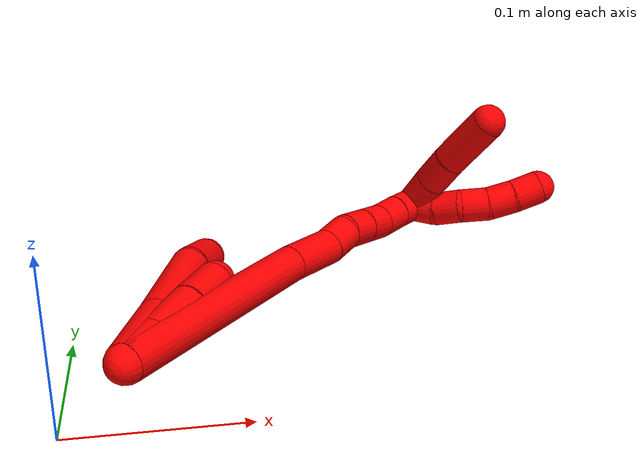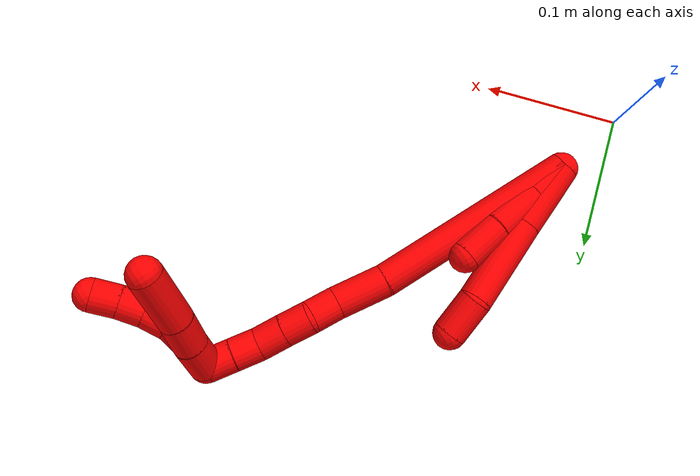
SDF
<sdf version="1.7">
 <world name="default">
  <model name="2">
   <static>0</static>
   <link name="2">
    <collision name="collision-cylinder-e_1_2_8">
     <pose>-0.009686 -0.001243 0.024513 0.050651 -0.375884 -0.009635</pose>
     <geometry><cylinder><radius>0.0125</radius><length>0.052772</length></cylinder></geometry>
     <surface>
      <friction><ode><mu>1.16</mu><mu2>1.16</mu2><slip1>0</slip1><slip2>0</slip2></ode></friction>
      <contact><ode><kp>1e+06</kp><kd>1</kd><max_vel>0</max_vel><min_depth>0.001</min_depth></ode></contact>
     </surface>
    </collision>
    <visual name="visual-cylinder-e_1_2_8">
     <pose>-0.009686 -0.001243 0.024513 0.050651 -0.375884 -0.009635</pose>
     <geometry><cylinder><radius>0.0125</radius><length>0.052772</length></cylinder></geometry>
     <material><ambient>1 0 0 1</ambient></material>
    </visual>
    <collision name="collision-cylinder-e_2_8_9">
     <pose>-0.031848 -0.005192 0.079973 0.087241 -0.381853 -0.016872</pose>
     <geometry><cylinder><radius>0.0125</radius><length>0.066955</length></cylinder></geometry>
     <surface>
      <friction><ode><mu>1.16</mu><mu2>1.16</mu2><slip1>0</slip1><slip2>0</slip2></ode></friction>
      <contact><ode><kp>1e+06</kp><kd>1</kd><max_vel>0</max_vel><min_depth>0.001</min_depth></ode></contact>
     </surface>
    </collision>
    <visual name="visual-cylinder-e_2_8_9">
     <pose>-0.031848 -0.005192 0.079973 0.087241 -0.381853 -0.016872</pose>
     <geometry><cylinder><radius>0.0125</radius><length>0.066955</length></cylinder></geometry>
     <material><ambient>1 0 0 1</ambient></material>
    </visual>
    <collision name="collision-cylinder-e_3_9_6">
     <pose>-0.049882 -0.004889 0.124674 -0.215493 -0.376118 0.041164</pose>
     <geometry><cylinder><radius>0.0125</radius><length>0.030272</length></cylinder></geometry>
     <surface>
      <friction><ode><mu>1.16</mu><mu2>1.16</mu2><slip1>0</slip1><slip2>0</slip2></ode></friction>
      <contact><ode><kp>1e+06</kp><kd>1</kd><max_vel>0</max_vel><min_depth>0.001</min_depth></ode></contact>
     </surface>
    </collision>
    <visual name="visual-cylinder-e_3_9_6">
     <pose>-0.049882 -0.004889 0.124674 -0.215493 -0.376118 0.041164</pose>
     <geometry><cylinder><radius>0.0125</radius><length>0.030272</length></cylinder></geometry>
     <material><ambient>1 0 0 1</ambient></material>
    </visual>
    <collision name="collision-cylinder-e_1_2_10">
     <pose>-0.002536 -1e-05 0.014695 0.000678 -0.170874 -5.8e-05</pose>
     <geometry><cylinder><radius>0.0125</radius><length>0.029823</length></cylinder></geometry>
     <surface>
      <friction><ode><mu>1.16</mu><mu2>1.16</mu2><slip1>0</slip1><slip2>0</slip2></ode></friction>
      <contact><ode><kp>1e+06</kp><kd>1</kd><max_vel>0</max_vel><min_depth>0.001</min_depth></ode></contact>
     </surface>
    </collision>
    <visual name="visual-cylinder-e_1_2_10">
     <pose>-0.002536 -1e-05 0.014695 0.000678 -0.170874 -5.8e-05</pose>
     <geometry><cylinder><radius>0.0125</radius><length>0.029823</length></cylinder></geometry>
     <material><ambient>1 0 0 1</ambient></material>
    </visual>
    <collision name="collision-cylinder-e_2_10_11">
     <pose>-0.007299 -0.001419 0.048286 0.073919 -0.117008 -0.004331</pose>
     <geometry><cylinder><radius>0.0125</radius><length>0.038159</length></cylinder></geometry>
     <surface>
      <friction><ode><mu>1.16</mu><mu2>1.16</mu2><slip1>0</slip1><slip2>0</slip2></ode></friction>
      <contact><ode><kp>1e+06</kp><kd>1</kd><max_vel>0</max_vel><min_depth>0.001</min_depth></ode></contact>
     </surface>
    </collision>
    <visual name="visual-cylinder-e_2_10_11">
     <pose>-0.007299 -0.001419 0.048286 0.073919 -0.117008 -0.004331</pose>
     <geometry><cylinder><radius>0.0125</radius><length>0.038159</length></cylinder></geometry>
     <material><ambient>1 0 0 1</ambient></material>
    </visual>
    <collision name="collision-cylinder-e_3_11_5">
     <pose>-0.012 -0.00317 0.082996 0.022242 -0.155166 -0.001729</pose>
     <geometry><cylinder><radius>0.0125</radius><length>0.032018</length></cylinder></geometry>
     <surface>
      <friction><ode><mu>1.16</mu><mu2>1.16</mu2><slip1>0</slip1><slip2>0</slip2></ode></friction>
      <contact><ode><kp>1e+06</kp><kd>1</kd><max_vel>0</max_vel><min_depth>0.001</min_depth></ode></contact>
     </surface>
    </collision>
    <visual name="visual-cylinder-e_3_11_5">
     <pose>-0.012 -0.00317 0.082996 0.022242 -0.155166 -0.001729</pose>
     <geometry><cylinder><radius>0.0125</radius><length>0.032018</length></cylinder></geometry>
     <material><ambient>1 0 0 1</ambient></material>
    </visual>
    <collision name="collision-cylinder-e_1_2_12">
     <pose>0.000271 0.005553 0.078338 -0.070763 0.003447 -0.000122</pose>
     <geometry><cylinder><radius>0.0125</radius><length>0.15707</length></cylinder></geometry>
     <surface>
      <friction><ode><mu>1.16</mu><mu2>1.16</mu2><slip1>0</slip1><slip2>0</slip2></ode></friction>
      <contact><ode><kp>1e+06</kp><kd>1</kd><max_vel>0</max_vel><min_depth>0.001</min_depth></ode></contact>
     </surface>
    </collision>
    <visual name="visual-cylinder-e_1_2_12">
     <pose>0.000271 0.005553 0.078338 -0.070763 0.003447 -0.000122</pose>
     <geometry><cylinder><radius>0.0125</radius><length>0.15707</length></cylinder></geometry>
     <material><ambient>1 0 0 1</ambient></material>
    </visual>
    <collision name="collision-cylinder-e_2_12_13">
     <pose>0.00301 0.013099 0.175934 -0.10314 0.12683 -0.006555</pose>
     <geometry><cylinder><radius>0.0125</radius><length>0.039035</length></cylinder></geometry>
     <surface>
      <friction><ode><mu>1.16</mu><mu2>1.16</mu2><slip1>0</slip1><slip2>0</slip2></ode></friction>
      <contact><ode><kp>1e+06</kp><kd>1</kd><max_vel>0</max_vel><min_depth>0.001</min_depth></ode></contact>
     </surface>
    </collision>
    <visual name="visual-cylinder-e_2_12_13">
     <pose>0.00301 0.013099 0.175934 -0.10314 0.12683 -0.006555</pose>
     <geometry><cylinder><radius>0.0125</radius><length>0.039035</length></cylinder></geometry>
     <material><ambient>1 0 0 1</ambient></material>
    </visual>
    <collision name="collision-cylinder-e_3_13_14">
     <pose>0.006505 0.013901 0.205894 0.110835 0.094995 0.005274</pose>
     <geometry><cylinder><radius>0.0125</radius><length>0.021634</length></cylinder></geometry>
     <surface>
      <friction><ode><mu>1.16</mu><mu2>1.16</mu2><slip1>0</slip1><slip2>0</slip2></ode></friction>
      <contact><ode><kp>1e+06</kp><kd>1</kd><max_vel>0</max_vel><min_depth>0.001</min_depth></ode></contact>
     </surface>
    </collision>
    <visual name="visual-cylinder-e_3_13_14">
     <pose>0.006505 0.013901 0.205894 0.110835 0.094995 0.005274</pose>
     <geometry><cylinder><radius>0.0125</radius><length>0.021634</length></cylinder></geometry>
     <material><ambient>1 0 0 1</ambient></material>
    </visual>
    <collision name="collision-cylinder-e_4_14_15">
     <pose>0.00833 0.014848 0.226742 -0.207665 0.076945 -0.008022</pose>
     <geometry><cylinder><radius>0.0125</radius><length>0.020798</length></cylinder></geometry>
     <surface>
      <friction><ode><mu>1.16</mu><mu2>1.16</mu2><slip1>0</slip1><slip2>0</slip2></ode></friction>
      <contact><ode><kp>1e+06</kp><kd>1</kd><max_vel>0</max_vel><min_depth>0.001</min_depth></ode></contact>
     </surface>
    </collision>
    <visual name="visual-cylinder-e_4_14_15">
     <pose>0.00833 0.014848 0.226742 -0.207665 0.076945 -0.008022</pose>
     <geometry><cylinder><radius>0.0125</radius><length>0.020798</length></cylinder></geometry>
     <material><ambient>1 0 0 1</ambient></material>
    </visual>
    <collision name="collision-cylinder-e_5_15_16">
     <pose>0.009659 0.019244 0.24724 -0.214782 0.049955 -0.005387</pose>
     <geometry><cylinder><radius>0.0125</radius><length>0.021218</length></cylinder></geometry>
     <surface>
      <friction><ode><mu>1.16</mu><mu2>1.16</mu2><slip1>0</slip1><slip2>0</slip2></ode></friction>
      <contact><ode><kp>1e+06</kp><kd>1</kd><max_vel>0</max_vel><min_depth>0.001</min_depth></ode></contact>
     </surface>
    </collision>
    <visual name="visual-cylinder-e_5_15_16">
     <pose>0.009659 0.019244 0.24724 -0.214782 0.049955 -0.005387</pose>
     <geometry><cylinder><radius>0.0125</radius><length>0.021218</length></cylinder></geometry>
     <material><ambient>1 0 0 1</ambient></material>
    </visual>
    <collision name="collision-cylinder-e_6_16_17">
     <pose>0.011965 0.02175 0.267462 -0.025094 0.17795 -0.002239</pose>
     <geometry><cylinder><radius>0.0125</radius><length>0.020064</length></cylinder></geometry>
     <surface>
      <friction><ode><mu>1.16</mu><mu2>1.16</mu2><slip1>0</slip1><slip2>0</slip2></ode></friction>
      <contact><ode><kp>1e+06</kp><kd>1</kd><max_vel>0</max_vel><min_depth>0.001</min_depth></ode></contact>
     </surface>
    </collision>
    <visual name="visual-cylinder-e_6_16_17">
     <pose>0.011965 0.02175 0.267462 -0.025094 0.17795 -0.002239</pose>
     <geometry><cylinder><radius>0.0125</radius><length>0.020064</length></cylinder></geometry>
     <material><ambient>1 0 0 1</ambient></material>
    </visual>
    <collision name="collision-cylinder-e_7_17_1">
     <pose>0.015473 0.022712 0.287247 -0.071903 0.172566 -0.006222</pose>
     <geometry><cylinder><radius>0.0125</radius><length>0.020181</length></cylinder></geometry>
     <surface>
      <friction><ode><mu>1.16</mu><mu2>1.16</mu2><slip1>0</slip1><slip2>0</slip2></ode></friction>
      <contact><ode><kp>1e+06</kp><kd>1</kd><max_vel>0</max_vel><min_depth>0.001</min_depth></ode></contact>
     </surface>
    </collision>
    <visual name="visual-cylinder-e_7_17_1">
     <pose>0.015473 0.022712 0.287247 -0.071903 0.172566 -0.006222</pose>
     <geometry><cylinder><radius>0.0125</radius><length>0.020181</length></cylinder></geometry>
     <material><ambient>1 0 0 1</ambient></material>
    </visual>
    <collision name="collision-cylinder-e_1_1_18">
     <pose>0.026871 0.025872 0.297941 -1.26252 1.31121 -1.02438</pose>
     <geometry><cylinder><radius>0.0125</radius><length>0.02</length></cylinder></geometry>
     <surface>
      <friction><ode><mu>1.16</mu><mu2>1.16</mu2><slip1>0</slip1><slip2>0</slip2></ode></friction>
      <contact><ode><kp>1e+06</kp><kd>1</kd><max_vel>0</max_vel><min_depth>0.001</min_depth></ode></contact>
     </surface>
    </collision>
    <visual name="visual-cylinder-e_1_1_18">
     <pose>0.026871 0.025872 0.297941 -1.26252 1.31121 -1.02438</pose>
     <geometry><cylinder><radius>0.0125</radius><length>0.02</length></cylinder></geometry>
     <material><ambient>1 0 0 1</ambient></material>
    </visual>
    <collision name="collision-cylinder-e_2_18_19">
     <pose>0.04631 0.028142 0.300828 0.08305 1.35769 0.067014</pose>
     <geometry><cylinder><radius>0.0125</radius><length>0.02</length></cylinder></geometry>
     <surface>
      <friction><ode><mu>1.16</mu><mu2>1.16</mu2><slip1>0</slip1><slip2>0</slip2></ode></friction>
      <contact><ode><kp>1e+06</kp><kd>1</kd><max_vel>0</max_vel><min_depth>0.001</min_depth></ode></contact>
     </surface>
    </collision>
    <visual name="visual-cylinder-e_2_18_19">
     <pose>0.04631 0.028142 0.300828 0.08305 1.35769 0.067014</pose>
     <geometry><cylinder><radius>0.0125</radius><length>0.02</length></cylinder></geometry>
     <material><ambient>1 0 0 1</ambient></material>
    </visual>
    <collision name="collision-cylinder-e_3_19_20">
     <pose>0.064708 0.029251 0.307831 -0.256643 1.04005 -0.147496</pose>
     <geometry><cylinder><radius>0.0125</radius><length>0.02</length></cylinder></geometry>
     <surface>
      <friction><ode><mu>1.16</mu><mu2>1.16</mu2><slip1>0</slip1><slip2>0</slip2></ode></friction>
      <contact><ode><kp>1e+06</kp><kd>1</kd><max_vel>0</max_vel><min_depth>0.001</min_depth></ode></contact>
     </surface>
    </collision>
    <visual name="visual-cylinder-e_3_19_20">
     <pose>0.064708 0.029251 0.307831 -0.256643 1.04005 -0.147496</pose>
     <geometry><cylinder><radius>0.0125</radius><length>0.02</length></cylinder></geometry>
     <material><ambient>1 0 0 1</ambient></material>
    </visual>
    <collision name="collision-cylinder-e_4_20_21">
     <pose>0.08134 0.030036 0.318697 0.083613 0.92854 0.04189</pose>
     <geometry><cylinder><radius>0.0125</radius><length>0.02</length></cylinder></geometry>
     <surface>
      <friction><ode><mu>1.16</mu><mu2>1.16</mu2><slip1>0</slip1><slip2>0</slip2></ode></friction>
      <contact><ode><kp>1e+06</kp><kd>1</kd><max_vel>0</max_vel><min_depth>0.001</min_depth></ode></contact>
     </surface>
    </collision>
    <visual name="visual-cylinder-e_4_20_21">
     <pose>0.08134 0.030036 0.318697 0.083613 0.92854 0.04189</pose>
     <geometry><cylinder><radius>0.0125</radius><length>0.02</length></cylinder></geometry>
     <material><ambient>1 0 0 1</ambient></material>
    </visual>
    <collision name="collision-cylinder-e_5_21_4">
     <pose>0.096696 0.028548 0.331375 0.146183 0.825484 0.064105</pose>
     <geometry><cylinder><radius>0.0125</radius><length>0.02</length></cylinder></geometry>
     <surface>
      <friction><ode><mu>1.16</mu><mu2>1.16</mu2><slip1>0</slip1><slip2>0</slip2></ode></friction>
      <contact><ode><kp>1e+06</kp><kd>1</kd><max_vel>0</max_vel><min_depth>0.001</min_depth></ode></contact>
     </surface>
    </collision>
    <visual name="visual-cylinder-e_5_21_4">
     <pose>0.096696 0.028548 0.331375 0.146183 0.825484 0.064105</pose>
     <geometry><cylinder><radius>0.0125</radius><length>0.02</length></cylinder></geometry>
     <material><ambient>1 0 0 1</ambient></material>
    </visual>
    <collision name="collision-cylinder-e_1_1_22">
     <pose>0.027921 0.013943 0.296909 1.59749 0.846131 0.866295</pose>
     <geometry><cylinder><radius>0.0125</radius><length>0.028622</length></cylinder></geometry>
     <surface>
      <friction><ode><mu>1.16</mu><mu2>1.16</mu2><slip1>0</slip1><slip2>0</slip2></ode></friction>
      <contact><ode><kp>1e+06</kp><kd>1</kd><max_vel>0</max_vel><min_depth>0.001</min_depth></ode></contact>
     </surface>
    </collision>
    <visual name="visual-cylinder-e_1_1_22">
     <pose>0.027921 0.013943 0.296909 1.59749 0.846131 0.866295</pose>
     <geometry><cylinder><radius>0.0125</radius><length>0.028622</length></cylinder></geometry>
     <material><ambient>1 0 0 1</ambient></material>
    </visual>
    <collision name="collision-cylinder-e_2_22_23">
     <pose>0.048803 -0.003758 0.295572 1.702 0.886829 0.992981</pose>
     <geometry><cylinder><radius>0.0125</radius><length>0.026235</length></cylinder></geometry>
     <surface>
      <friction><ode><mu>1.16</mu><mu2>1.16</mu2><slip1>0</slip1><slip2>0</slip2></ode></friction>
      <contact><ode><kp>1e+06</kp><kd>1</kd><max_vel>0</max_vel><min_depth>0.001</min_depth></ode></contact>
     </surface>
    </collision>
    <visual name="visual-cylinder-e_2_22_23">
     <pose>0.048803 -0.003758 0.295572 1.702 0.886829 0.992981</pose>
     <geometry><cylinder><radius>0.0125</radius><length>0.026235</length></cylinder></geometry>
     <material><ambient>1 0 0 1</ambient></material>
    </visual>
    <collision name="collision-cylinder-e_3_23_3">
     <pose>0.07718 -0.025292 0.293772 1.62442 0.938705 0.98267</pose>
     <geometry><cylinder><radius>0.0125</radius><length>0.045143</length></cylinder></geometry>
     <surface>
      <friction><ode><mu>1.16</mu><mu2>1.16</mu2><slip1>0</slip1><slip2>0</slip2></ode></friction>
      <contact><ode><kp>1e+06</kp><kd>1</kd><max_vel>0</max_vel><min_depth>0.001</min_depth></ode></contact>
     </surface>
    </collision>
    <visual name="visual-cylinder-e_3_23_3">
     <pose>0.07718 -0.025292 0.293772 1.62442 0.938705 0.98267</pose>
     <geometry><cylinder><radius>0.0125</radius><length>0.045143</length></cylinder></geometry>
     <material><ambient>1 0 0 1</ambient></material>
    </visual>
    <collision name="collision-sphere-3">
     <pose>0.095391 -0.038609 0.293058 0 -0 0</pose>
     <geometry><sphere><radius>0.0125</radius></sphere></geometry>
     <surface>
      <friction><ode><mu>1.16</mu><mu2>1.16</mu2><slip1>0</slip1><slip2>0</slip2></ode></friction>
      <contact><ode><kp>1e+06</kp><kd>1</kd><max_vel>0</max_vel><min_depth>0.001</min_depth></ode></contact>
     </surface>
    </collision>
    <visual name="visual-sphere-3">
     <pose>0.095391 -0.038609 0.293058 0 -0 0</pose>
     <geometry><sphere><radius>0.0125</radius></sphere></geometry>
     <material><ambient>1 0 0 1</ambient></material>
    </visual>
    <collision name="collision-sphere-23">
     <pose>0.05897 -0.011975 0.294487 0 -0 0</pose>
     <geometry><sphere><radius>0.0125</radius></sphere></geometry>
     <surface>
      <friction><ode><mu>1.16</mu><mu2>1.16</mu2><slip1>0</slip1><slip2>0</slip2></ode></friction>
      <contact><ode><kp>1e+06</kp><kd>1</kd><max_vel>0</max_vel><min_depth>0.001</min_depth></ode></contact>
     </surface>
    </collision>
    <visual name="visual-sphere-23">
     <pose>0.05897 -0.011975 0.294487 0 -0 0</pose>
     <geometry><sphere><radius>0.0125</radius></sphere></geometry>
     <material><ambient>1 0 0 1</ambient></material>
    </visual>
    <collision name="collision-sphere-22">
     <pose>0.038636 0.00446 0.296656 0 -0 0</pose>
     <geometry><sphere><radius>0.0125</radius></sphere></geometry>
     <surface>
      <friction><ode><mu>1.16</mu><mu2>1.16</mu2><slip1>0</slip1><slip2>0</slip2></ode></friction>
      <contact><ode><kp>1e+06</kp><kd>1</kd><max_vel>0</max_vel><min_depth>0.001</min_depth></ode></contact>
     </surface>
    </collision>
    <visual name="visual-sphere-22">
     <pose>0.038636 0.00446 0.296656 0 -0 0</pose>
     <geometry><sphere><radius>0.0125</radius></sphere></geometry>
     <material><ambient>1 0 0 1</ambient></material>
    </visual>
    <collision name="collision-sphere-4">
     <pose>0.104044 0.02756 0.338085 0 -0 0</pose>
     <geometry><sphere><radius>0.0125</radius></sphere></geometry>
     <surface>
      <friction><ode><mu>1.16</mu><mu2>1.16</mu2><slip1>0</slip1><slip2>0</slip2></ode></friction>
      <contact><ode><kp>1e+06</kp><kd>1</kd><max_vel>0</max_vel><min_depth>0.001</min_depth></ode></contact>
     </surface>
    </collision>
    <visual name="visual-sphere-4">
     <pose>0.104044 0.02756 0.338085 0 -0 0</pose>
     <geometry><sphere><radius>0.0125</radius></sphere></geometry>
     <material><ambient>1 0 0 1</ambient></material>
    </visual>
    <collision name="collision-sphere-21">
     <pose>0.089347 0.029536 0.324666 0 -0 0</pose>
     <geometry><sphere><radius>0.0125</radius></sphere></geometry>
     <surface>
      <friction><ode><mu>1.16</mu><mu2>1.16</mu2><slip1>0</slip1><slip2>0</slip2></ode></friction>
      <contact><ode><kp>1e+06</kp><kd>1</kd><max_vel>0</max_vel><min_depth>0.001</min_depth></ode></contact>
     </surface>
    </collision>
    <visual name="visual-sphere-21">
     <pose>0.089347 0.029536 0.324666 0 -0 0</pose>
     <geometry><sphere><radius>0.0125</radius></sphere></geometry>
     <material><ambient>1 0 0 1</ambient></material>
    </visual>
    <collision name="collision-sphere-20">
     <pose>0.073332 0.030536 0.312727 0 -0 0</pose>
     <geometry><sphere><radius>0.0125</radius></sphere></geometry>
     <surface>
      <friction><ode><mu>1.16</mu><mu2>1.16</mu2><slip1>0</slip1><slip2>0</slip2></ode></friction>
      <contact><ode><kp>1e+06</kp><kd>1</kd><max_vel>0</max_vel><min_depth>0.001</min_depth></ode></contact>
     </surface>
    </collision>
    <visual name="visual-sphere-20">
     <pose>0.073332 0.030536 0.312727 0 -0 0</pose>
     <geometry><sphere><radius>0.0125</radius></sphere></geometry>
     <material><ambient>1 0 0 1</ambient></material>
    </visual>
    <collision name="collision-sphere-11">
     <pose>-0.009526 -0.002819 0.067183 0 -0 0</pose>
     <geometry><sphere><radius>0.0125</radius></sphere></geometry>
     <surface>
      <friction><ode><mu>1.16</mu><mu2>1.16</mu2><slip1>0</slip1><slip2>0</slip2></ode></friction>
      <contact><ode><kp>1e+06</kp><kd>1</kd><max_vel>0</max_vel><min_depth>0.001</min_depth></ode></contact>
     </surface>
    </collision>
    <visual name="visual-sphere-11">
     <pose>-0.009526 -0.002819 0.067183 0 -0 0</pose>
     <geometry><sphere><radius>0.0125</radius></sphere></geometry>
     <material><ambient>1 0 0 1</ambient></material>
    </visual>
    <collision name="collision-sphere-10">
     <pose>-0.005071 -2e-05 0.029389 0 -0 0</pose>
     <geometry><sphere><radius>0.0125</radius></sphere></geometry>
     <surface>
      <friction><ode><mu>1.16</mu><mu2>1.16</mu2><slip1>0</slip1><slip2>0</slip2></ode></friction>
      <contact><ode><kp>1e+06</kp><kd>1</kd><max_vel>0</max_vel><min_depth>0.001</min_depth></ode></contact>
     </surface>
    </collision>
    <visual name="visual-sphere-10">
     <pose>-0.005071 -2e-05 0.029389 0 -0 0</pose>
     <geometry><sphere><radius>0.0125</radius></sphere></geometry>
     <material><ambient>1 0 0 1</ambient></material>
    </visual>
    <collision name="collision-sphere-6">
     <pose>-0.055442 -0.001878 0.138427 0 -0 0</pose>
     <geometry><sphere><radius>0.0125</radius></sphere></geometry>
     <surface>
      <friction><ode><mu>1.16</mu><mu2>1.16</mu2><slip1>0</slip1><slip2>0</slip2></ode></friction>
      <contact><ode><kp>1e+06</kp><kd>1</kd><max_vel>0</max_vel><min_depth>0.001</min_depth></ode></contact>
     </surface>
    </collision>
    <visual name="visual-sphere-6">
     <pose>-0.055442 -0.001878 0.138427 0 -0 0</pose>
     <geometry><sphere><radius>0.0125</radius></sphere></geometry>
     <material><ambient>1 0 0 1</ambient></material>
    </visual>
    <collision name="collision-sphere-9">
     <pose>-0.044323 -0.007899 0.110922 0 -0 0</pose>
     <geometry><sphere><radius>0.0125</radius></sphere></geometry>
     <surface>
      <friction><ode><mu>1.16</mu><mu2>1.16</mu2><slip1>0</slip1><slip2>0</slip2></ode></friction>
      <contact><ode><kp>1e+06</kp><kd>1</kd><max_vel>0</max_vel><min_depth>0.001</min_depth></ode></contact>
     </surface>
    </collision>
    <visual name="visual-sphere-9">
     <pose>-0.044323 -0.007899 0.110922 0 -0 0</pose>
     <geometry><sphere><radius>0.0125</radius></sphere></geometry>
     <material><ambient>1 0 0 1</ambient></material>
    </visual>
    <collision name="collision-sphere-2">
     <geometry><sphere><radius>0.0125</radius></sphere></geometry>
     <surface>
      <friction><ode><mu>1.16</mu><mu2>1.16</mu2><slip1>0</slip1><slip2>0</slip2></ode></friction>
      <contact><ode><kp>1e+06</kp><kd>1</kd><max_vel>0</max_vel><min_depth>0.001</min_depth></ode></contact>
     </surface>
    </collision>
    <visual name="visual-sphere-2">
     <geometry><sphere><radius>0.0125</radius></sphere></geometry>
     <material><ambient>1 0 0 1</ambient></material>
    </visual>
    <collision name="collision-sphere-19">
     <pose>0.056083 0.027967 0.302935 0 -0 0</pose>
     <geometry><sphere><radius>0.0125</radius></sphere></geometry>
     <surface>
      <friction><ode><mu>1.16</mu><mu2>1.16</mu2><slip1>0</slip1><slip2>0</slip2></ode></friction>
      <contact><ode><kp>1e+06</kp><kd>1</kd><max_vel>0</max_vel><min_depth>0.001</min_depth></ode></contact>
     </surface>
    </collision>
    <visual name="visual-sphere-19">
     <pose>0.056083 0.027967 0.302935 0 -0 0</pose>
     <geometry><sphere><radius>0.0125</radius></sphere></geometry>
     <material><ambient>1 0 0 1</ambient></material>
    </visual>
    <collision name="collision-sphere-8">
     <pose>-0.019372 -0.002485 0.049025 0 -0 0</pose>
     <geometry><sphere><radius>0.0125</radius></sphere></geometry>
     <surface>
      <friction><ode><mu>1.16</mu><mu2>1.16</mu2><slip1>0</slip1><slip2>0</slip2></ode></friction>
      <contact><ode><kp>1e+06</kp><kd>1</kd><max_vel>0</max_vel><min_depth>0.001</min_depth></ode></contact>
     </surface>
    </collision>
    <visual name="visual-sphere-8">
     <pose>-0.019372 -0.002485 0.049025 0 -0 0</pose>
     <geometry><sphere><radius>0.0125</radius></sphere></geometry>
     <material><ambient>1 0 0 1</ambient></material>
    </visual>
    <collision name="collision-sphere-5">
     <pose>-0.014474 -0.003522 0.098809 0 -0 0</pose>
     <geometry><sphere><radius>0.0125</radius></sphere></geometry>
     <surface>
      <friction><ode><mu>1.16</mu><mu2>1.16</mu2><slip1>0</slip1><slip2>0</slip2></ode></friction>
      <contact><ode><kp>1e+06</kp><kd>1</kd><max_vel>0</max_vel><min_depth>0.001</min_depth></ode></contact>
     </surface>
    </collision>
    <visual name="visual-sphere-5">
     <pose>-0.014474 -0.003522 0.098809 0 -0 0</pose>
     <geometry><sphere><radius>0.0125</radius></sphere></geometry>
     <material><ambient>1 0 0 1</ambient></material>
    </visual>
    <collision name="collision-sphere-12">
     <pose>0.000541 0.011105 0.156676 0 -0 0</pose>
     <geometry><sphere><radius>0.0125</radius></sphere></geometry>
     <surface>
      <friction><ode><mu>1.16</mu><mu2>1.16</mu2><slip1>0</slip1><slip2>0</slip2></ode></friction>
      <contact><ode><kp>1e+06</kp><kd>1</kd><max_vel>0</max_vel><min_depth>0.001</min_depth></ode></contact>
     </surface>
    </collision>
    <visual name="visual-sphere-12">
     <pose>0.000541 0.011105 0.156676 0 -0 0</pose>
     <geometry><sphere><radius>0.0125</radius></sphere></geometry>
     <material><ambient>1 0 0 1</ambient></material>
    </visual>
    <collision name="collision-sphere-13">
     <pose>0.005479 0.015092 0.195192 0 -0 0</pose>
     <geometry><sphere><radius>0.0125</radius></sphere></geometry>
     <surface>
      <friction><ode><mu>1.16</mu><mu2>1.16</mu2><slip1>0</slip1><slip2>0</slip2></ode></friction>
      <contact><ode><kp>1e+06</kp><kd>1</kd><max_vel>0</max_vel><min_depth>0.001</min_depth></ode></contact>
     </surface>
    </collision>
    <visual name="visual-sphere-13">
     <pose>0.005479 0.015092 0.195192 0 -0 0</pose>
     <geometry><sphere><radius>0.0125</radius></sphere></geometry>
     <material><ambient>1 0 0 1</ambient></material>
    </visual>
    <collision name="collision-sphere-14">
     <pose>0.007531 0.01271 0.216596 0 -0 0</pose>
     <geometry><sphere><radius>0.0125</radius></sphere></geometry>
     <surface>
      <friction><ode><mu>1.16</mu><mu2>1.16</mu2><slip1>0</slip1><slip2>0</slip2></ode></friction>
      <contact><ode><kp>1e+06</kp><kd>1</kd><max_vel>0</max_vel><min_depth>0.001</min_depth></ode></contact>
     </surface>
    </collision>
    <visual name="visual-sphere-14">
     <pose>0.007531 0.01271 0.216596 0 -0 0</pose>
     <geometry><sphere><radius>0.0125</radius></sphere></geometry>
     <material><ambient>1 0 0 1</ambient></material>
    </visual>
    <collision name="collision-sphere-15">
     <pose>0.00913 0.016986 0.236887 0 -0 0</pose>
     <geometry><sphere><radius>0.0125</radius></sphere></geometry>
     <surface>
      <friction><ode><mu>1.16</mu><mu2>1.16</mu2><slip1>0</slip1><slip2>0</slip2></ode></friction>
      <contact><ode><kp>1e+06</kp><kd>1</kd><max_vel>0</max_vel><min_depth>0.001</min_depth></ode></contact>
     </surface>
    </collision>
    <visual name="visual-sphere-15">
     <pose>0.00913 0.016986 0.236887 0 -0 0</pose>
     <geometry><sphere><radius>0.0125</radius></sphere></geometry>
     <material><ambient>1 0 0 1</ambient></material>
    </visual>
    <collision name="collision-sphere-16">
     <pose>0.010189 0.021502 0.257592 0 -0 0</pose>
     <geometry><sphere><radius>0.0125</radius></sphere></geometry>
     <surface>
      <friction><ode><mu>1.16</mu><mu2>1.16</mu2><slip1>0</slip1><slip2>0</slip2></ode></friction>
      <contact><ode><kp>1e+06</kp><kd>1</kd><max_vel>0</max_vel><min_depth>0.001</min_depth></ode></contact>
     </surface>
    </collision>
    <visual name="visual-sphere-16">
     <pose>0.010189 0.021502 0.257592 0 -0 0</pose>
     <geometry><sphere><radius>0.0125</radius></sphere></geometry>
     <material><ambient>1 0 0 1</ambient></material>
    </visual>
    <collision name="collision-sphere-17">
     <pose>0.013741 0.021998 0.277332 0 -0 0</pose>
     <geometry><sphere><radius>0.0125</radius></sphere></geometry>
     <surface>
      <friction><ode><mu>1.16</mu><mu2>1.16</mu2><slip1>0</slip1><slip2>0</slip2></ode></friction>
      <contact><ode><kp>1e+06</kp><kd>1</kd><max_vel>0</max_vel><min_depth>0.001</min_depth></ode></contact>
     </surface>
    </collision>
    <visual name="visual-sphere-17">
     <pose>0.013741 0.021998 0.277332 0 -0 0</pose>
     <geometry><sphere><radius>0.0125</radius></sphere></geometry>
     <material><ambient>1 0 0 1</ambient></material>
    </visual>
    <collision name="collision-sphere-1">
     <pose>0.017206 0.023426 0.297162 0 -0 0</pose>
     <geometry><sphere><radius>0.0125</radius></sphere></geometry>
     <surface>
      <friction><ode><mu>1.16</mu><mu2>1.16</mu2><slip1>0</slip1><slip2>0</slip2></ode></friction>
      <contact><ode><kp>1e+06</kp><kd>1</kd><max_vel>0</max_vel><min_depth>0.001</min_depth></ode></contact>
     </surface>
    </collision>
    <visual name="visual-sphere-1">
     <pose>0.017206 0.023426 0.297162 0 -0 0</pose>
     <geometry><sphere><radius>0.0125</radius></sphere></geometry>
     <material><ambient>1 0 0 1</ambient></material>
    </visual>
    <collision name="collision-sphere-18">
     <pose>0.036536 0.028318 0.29872 0 -0 0</pose>
     <geometry><sphere><radius>0.0125</radius></sphere></geometry>
     <surface>
      <friction><ode><mu>1.16</mu><mu2>1.16</mu2><slip1>0</slip1><slip2>0</slip2></ode></friction>
      <contact><ode><kp>1e+06</kp><kd>1</kd><max_vel>0</max_vel><min_depth>0.001</min_depth></ode></contact>
     </surface>
    </collision>
    <visual name="visual-sphere-18">
     <pose>0.036536 0.028318 0.29872 0 -0 0</pose>
     <geometry><sphere><radius>0.0125</radius></sphere></geometry>
     <material><ambient>1 0 0 1</ambient></material>
    </visual>
    <inertial>
     <pose>0.010962 0.006099 0.161013 0 -0 0</pose>
     <mass>0.75</mass>
     <inertia>
      <ixx>0.000423</ixx>
      <ixy>0</ixy>
      <ixz>0</ixz>
      <iyy>0.000421</iyy>
      <iyz>0</iyz>
      <izz>2.9e-05</izz>
     </inertia>
    </inertial>
   </link>
   <pose>0.033127 0.050837 0.012443 -1.49612 -0.215603 -0.725781</pose>
  </model>
 </world>
</sdf>
